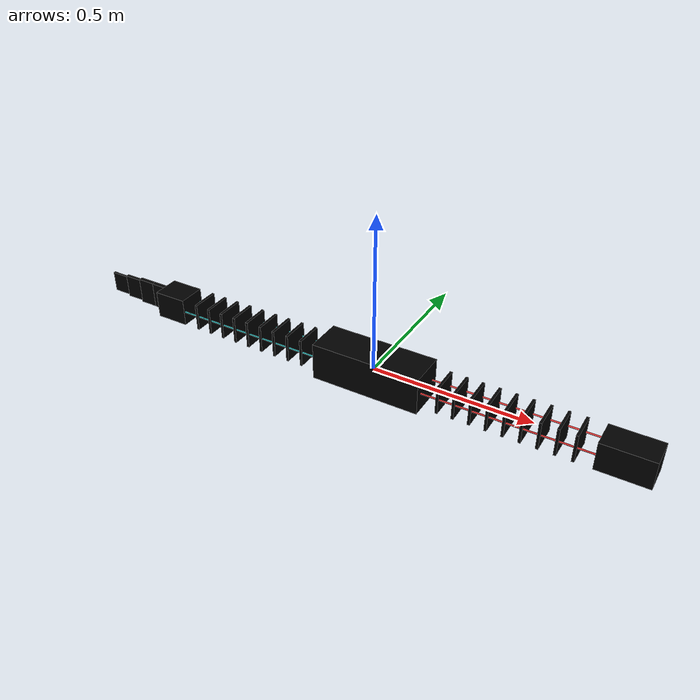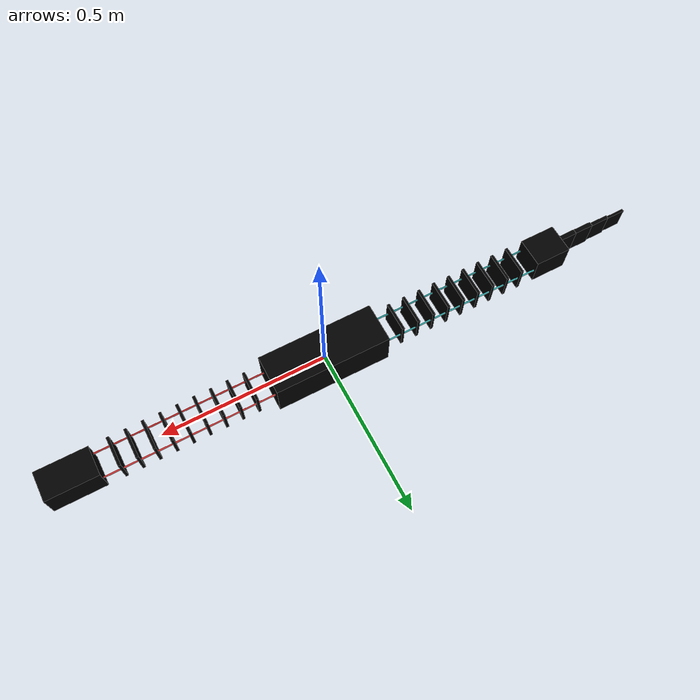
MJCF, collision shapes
<mujoco model="eel_2d_stl_rebuild">
  <compiler angle="degree" autolimits="true" inertiafromgeom="true" meshdir="generated_stl"/>
  <option timestep="0.002" gravity="0 0 0" integrator="implicitfast" cone="elliptic" iterations="100">
    <flag contact="disable"/>
  </option>
  <default>
    <site type="sphere" size="0.004" rgba="0.90 0.20 0.20 1" group="3"/>
    <default class="root_joint">
      <joint limited="false" stiffness="0" armature="0.01" damping="0.4"/>
    </default>
    <default class="active_hinge">
      <joint type="hinge" axis="0 0 1" limited="true" range="-15 15" stiffness="1.041" damping="0.05" armature="0.0005"/>
    </default>
    <default class="tail_hinge">
      <joint type="hinge" axis="0 0 1" limited="true" range="-25 25" stiffness="0.18" damping="0.02" armature="0.0002"/>
    </default>
    <default class="tendon_motor">
      <motor ctrllimited="true" ctrlrange="0 100" gear="1"/>
    </default>
  </default>
<asset>
  <mesh name="centre_compartment_mesh" file="centre_compartment_mesh.stl"/>
  <mesh name="vertebra_mesh" file="vertebra_mesh.stl"/>
  <mesh name="head_mesh" file="head_mesh.stl"/>
  <mesh name="tail_joint_mesh" file="tail_joint_mesh.stl"/>
  <mesh name="tail_seg1_mesh" file="tail_seg1_mesh.stl"/>
  <mesh name="tail_seg2_mesh" file="tail_seg2_mesh.stl"/>
  <mesh name="tail_seg3_mesh" file="tail_seg3_mesh.stl"/>
  <mesh name="tail_seg4_mesh" file="tail_seg4_mesh.stl"/>
</asset>
  <worldbody>
    <light name="light" directional="true" diffuse="0.8 0.8 0.8" pos="0 0 2.5"/>
    <camera name="top" pos="0 0 2.2" xyaxes="1 0 0 0 1 0"/>
    <camera name="oblique" pos="-1.2 -1.6 0.9" xyaxes="0.8 -0.6 0 0.2 0.3 0.93"/>
    <body name="centre_compartment" pos="0 0 0">
      <joint name="root_x" class="root_joint" type="slide" axis="1 0 0"/>
      <joint name="root_y" class="root_joint" type="slide" axis="0 1 0"/>
      <joint name="root_yaw" class="root_joint" type="hinge" axis="0 0 1"/>
      <geom name="centre_compartment_dyn" type="box" size="0.175 0.06 0.06" density="190" rgba="0 0 0 0" contype="0" conaffinity="0" group="4"/>
      <geom name="centre_compartment_vis" type="mesh" mesh="centre_compartment_mesh" mass="0" rgba="0.18 0.22 0.33 1" contype="0" conaffinity="0" group="1"/>
      <site name="centre_reference" pos="0 0 0" rgba="0 0 0 0"/>
      <site name="centre_front_left" pos="0.175 0.0375 0"/>
      <site name="centre_front_right" pos="0.175 -0.0375 0"/>
      <site name="centre_back_left" pos="-0.175 0.0375 0"/>
      <site name="centre_back_right" pos="-0.175 -0.0375 0"/>
      <body name="front_v1" pos="0.229 0 0">
        <joint name="front_v1_yaw" class="active_hinge"/>
        <geom name="front_v1_dyn" type="box" size="0.004 0.044985 0.045" density="220" rgba="0 0 0 0" contype="0" conaffinity="0" group="4"/>
        <geom name="front_v1_vis" type="mesh" mesh="vertebra_mesh" mass="0" rgba="0.20 0.54 0.81 1" contype="0" conaffinity="0" group="1"/>
        <site name="front_v1_left" pos="0 0.0375 0"/>
        <site name="front_v1_right" pos="0 -0.0375 0"/>
        <body name="front_v2" pos="0.05 0 0">
          <joint name="front_v2_yaw" class="active_hinge"/>
          <geom name="front_v2_dyn" type="box" size="0.004 0.044985 0.045" density="220" rgba="0 0 0 0" contype="0" conaffinity="0" group="4"/>
          <geom name="front_v2_vis" type="mesh" mesh="vertebra_mesh" mass="0" rgba="0.20 0.54 0.81 1" contype="0" conaffinity="0" group="1"/>
          <site name="front_v2_left" pos="0 0.0375 0"/>
          <site name="front_v2_right" pos="0 -0.0375 0"/>
          <body name="front_v3" pos="0.05 0 0">
            <joint name="front_v3_yaw" class="active_hinge"/>
            <geom name="front_v3_dyn" type="box" size="0.004 0.044985 0.045" density="220" rgba="0 0 0 0" contype="0" conaffinity="0" group="4"/>
            <geom name="front_v3_vis" type="mesh" mesh="vertebra_mesh" mass="0" rgba="0.20 0.54 0.81 1" contype="0" conaffinity="0" group="1"/>
            <site name="front_v3_left" pos="0 0.0375 0"/>
            <site name="front_v3_right" pos="0 -0.0375 0"/>
            <body name="front_v4" pos="0.05 0 0">
              <joint name="front_v4_yaw" class="active_hinge"/>
              <geom name="front_v4_dyn" type="box" size="0.004 0.044985 0.045" density="220" rgba="0 0 0 0" contype="0" conaffinity="0" group="4"/>
              <geom name="front_v4_vis" type="mesh" mesh="vertebra_mesh" mass="0" rgba="0.20 0.54 0.81 1" contype="0" conaffinity="0" group="1"/>
              <site name="front_v4_left" pos="0 0.0375 0"/>
              <site name="front_v4_right" pos="0 -0.0375 0"/>
              <body name="front_v5" pos="0.05 0 0">
                <joint name="front_v5_yaw" class="active_hinge"/>
                <geom name="front_v5_dyn" type="box" size="0.004 0.044985 0.045" density="220" rgba="0 0 0 0" contype="0" conaffinity="0" group="4"/>
                <geom name="front_v5_vis" type="mesh" mesh="vertebra_mesh" mass="0" rgba="0.20 0.54 0.81 1" contype="0" conaffinity="0" group="1"/>
                <site name="front_v5_left" pos="0 0.0375 0"/>
                <site name="front_v5_right" pos="0 -0.0375 0"/>
                <body name="front_v6" pos="0.05 0 0">
                  <joint name="front_v6_yaw" class="active_hinge"/>
                  <geom name="front_v6_dyn" type="box" size="0.004 0.044985 0.045" density="220" rgba="0 0 0 0" contype="0" conaffinity="0" group="4"/>
                  <geom name="front_v6_vis" type="mesh" mesh="vertebra_mesh" mass="0" rgba="0.20 0.54 0.81 1" contype="0" conaffinity="0" group="1"/>
                  <site name="front_v6_left" pos="0 0.0375 0"/>
                  <site name="front_v6_right" pos="0 -0.0375 0"/>
                  <body name="front_v7" pos="0.05 0 0">
                    <joint name="front_v7_yaw" class="active_hinge"/>
                    <geom name="front_v7_dyn" type="box" size="0.004 0.044985 0.045" density="220" rgba="0 0 0 0" contype="0" conaffinity="0" group="4"/>
                    <geom name="front_v7_vis" type="mesh" mesh="vertebra_mesh" mass="0" rgba="0.20 0.54 0.81 1" contype="0" conaffinity="0" group="1"/>
                    <site name="front_v7_left" pos="0 0.0375 0"/>
                    <site name="front_v7_right" pos="0 -0.0375 0"/>
                    <body name="front_v8" pos="0.05 0 0">
                      <joint name="front_v8_yaw" class="active_hinge"/>
                      <geom name="front_v8_dyn" type="box" size="0.004 0.044985 0.045" density="220" rgba="0 0 0 0" contype="0" conaffinity="0" group="4"/>
                      <geom name="front_v8_vis" type="mesh" mesh="vertebra_mesh" mass="0" rgba="0.20 0.54 0.81 1" contype="0" conaffinity="0" group="1"/>
                      <site name="front_v8_left" pos="0 0.0375 0"/>
                      <site name="front_v8_right" pos="0 -0.0375 0"/>
                      <body name="front_v9" pos="0.05 0 0">
                        <joint name="front_v9_yaw" class="active_hinge"/>
                        <geom name="front_v9_dyn" type="box" size="0.004 0.044985 0.045" density="220" rgba="0 0 0 0" contype="0" conaffinity="0" group="4"/>
                        <geom name="front_v9_vis" type="mesh" mesh="vertebra_mesh" mass="0" rgba="0.20 0.54 0.81 1" contype="0" conaffinity="0" group="1"/>
                        <site name="front_v9_left" pos="0 0.0375 0"/>
                        <site name="front_v9_right" pos="0 -0.0375 0"/>
                        <body name="head" pos="0.1315 0 0">
                          <joint name="head_yaw" class="active_hinge"/>
                          <geom name="head_dyn" type="box" size="0.0775 0.044989 0.044989" density="220" rgba="0 0 0 0" contype="0" conaffinity="0" group="4"/>
                          <geom name="head_vis" type="mesh" mesh="head_mesh" mass="0" rgba="0.10 0.37 0.64 1" contype="0" conaffinity="0" group="1"/>
                          <site name="head_left" pos="-0.0725 0.0375 0"/>
                          <site name="head_right" pos="-0.0725 -0.0375 0"/>
                        </body>
                      </body>
                    </body>
                  </body>
                </body>
              </body>
            </body>
          </body>
        </body>
      </body>
      <body name="back_v1" pos="-0.229 0 0">
        <joint name="back_v1_yaw" class="active_hinge"/>
        <geom name="back_v1_dyn" type="box" size="0.004 0.044985 0.045" density="220" rgba="0 0 0 0" contype="0" conaffinity="0" group="4"/>
        <geom name="back_v1_vis" type="mesh" mesh="vertebra_mesh" mass="0" rgba="0.20 0.54 0.81 1" contype="0" conaffinity="0" group="1"/>
        <site name="back_v1_left" pos="0 0.0375 0"/>
        <site name="back_v1_right" pos="0 -0.0375 0"/>
        <body name="back_v2" pos="-0.05 0 0">
          <joint name="back_v2_yaw" class="active_hinge"/>
          <geom name="back_v2_dyn" type="box" size="0.004 0.044985 0.045" density="220" rgba="0 0 0 0" contype="0" conaffinity="0" group="4"/>
          <geom name="back_v2_vis" type="mesh" mesh="vertebra_mesh" mass="0" rgba="0.20 0.54 0.81 1" contype="0" conaffinity="0" group="1"/>
          <site name="back_v2_left" pos="0 0.0375 0"/>
          <site name="back_v2_right" pos="0 -0.0375 0"/>
          <body name="back_v3" pos="-0.05 0 0">
            <joint name="back_v3_yaw" class="active_hinge"/>
            <geom name="back_v3_dyn" type="box" size="0.004 0.044985 0.045" density="220" rgba="0 0 0 0" contype="0" conaffinity="0" group="4"/>
            <geom name="back_v3_vis" type="mesh" mesh="vertebra_mesh" mass="0" rgba="0.20 0.54 0.81 1" contype="0" conaffinity="0" group="1"/>
            <site name="back_v3_left" pos="0 0.0375 0"/>
            <site name="back_v3_right" pos="0 -0.0375 0"/>
            <body name="back_v4" pos="-0.05 0 0">
              <joint name="back_v4_yaw" class="active_hinge"/>
              <geom name="back_v4_dyn" type="box" size="0.004 0.044985 0.045" density="220" rgba="0 0 0 0" contype="0" conaffinity="0" group="4"/>
              <geom name="back_v4_vis" type="mesh" mesh="vertebra_mesh" mass="0" rgba="0.20 0.54 0.81 1" contype="0" conaffinity="0" group="1"/>
              <site name="back_v4_left" pos="0 0.0375 0"/>
              <site name="back_v4_right" pos="0 -0.0375 0"/>
              <body name="back_v5" pos="-0.05 0 0">
                <joint name="back_v5_yaw" class="active_hinge"/>
                <geom name="back_v5_dyn" type="box" size="0.004 0.044985 0.045" density="220" rgba="0 0 0 0" contype="0" conaffinity="0" group="4"/>
                <geom name="back_v5_vis" type="mesh" mesh="vertebra_mesh" mass="0" rgba="0.20 0.54 0.81 1" contype="0" conaffinity="0" group="1"/>
                <site name="back_v5_left" pos="0 0.0375 0"/>
                <site name="back_v5_right" pos="0 -0.0375 0"/>
                <body name="back_v6" pos="-0.05 0 0">
                  <joint name="back_v6_yaw" class="active_hinge"/>
                  <geom name="back_v6_dyn" type="box" size="0.004 0.044985 0.045" density="220" rgba="0 0 0 0" contype="0" conaffinity="0" group="4"/>
                  <geom name="back_v6_vis" type="mesh" mesh="vertebra_mesh" mass="0" rgba="0.20 0.54 0.81 1" contype="0" conaffinity="0" group="1"/>
                  <site name="back_v6_left" pos="0 0.0375 0"/>
                  <site name="back_v6_right" pos="0 -0.0375 0"/>
                  <body name="back_v7" pos="-0.05 0 0">
                    <joint name="back_v7_yaw" class="active_hinge"/>
                    <geom name="back_v7_dyn" type="box" size="0.004 0.044985 0.045" density="220" rgba="0 0 0 0" contype="0" conaffinity="0" group="4"/>
                    <geom name="back_v7_vis" type="mesh" mesh="vertebra_mesh" mass="0" rgba="0.20 0.54 0.81 1" contype="0" conaffinity="0" group="1"/>
                    <site name="back_v7_left" pos="0 0.0375 0"/>
                    <site name="back_v7_right" pos="0 -0.0375 0"/>
                    <body name="back_v8" pos="-0.05 0 0">
                      <joint name="back_v8_yaw" class="active_hinge"/>
                      <geom name="back_v8_dyn" type="box" size="0.004 0.044985 0.045" density="220" rgba="0 0 0 0" contype="0" conaffinity="0" group="4"/>
                      <geom name="back_v8_vis" type="mesh" mesh="vertebra_mesh" mass="0" rgba="0.20 0.54 0.81 1" contype="0" conaffinity="0" group="1"/>
                      <site name="back_v8_left" pos="0 0.0375 0"/>
                      <site name="back_v8_right" pos="0 -0.0375 0"/>
                      <body name="back_v9" pos="-0.05 0 0">
                        <joint name="back_v9_yaw" class="active_hinge"/>
                        <geom name="back_v9_dyn" type="box" size="0.004 0.044985 0.045" density="220" rgba="0 0 0 0" contype="0" conaffinity="0" group="4"/>
                        <geom name="back_v9_vis" type="mesh" mesh="vertebra_mesh" mass="0" rgba="0.20 0.54 0.81 1" contype="0" conaffinity="0" group="1"/>
                        <site name="back_v9_left" pos="0 0.0375 0"/>
                        <site name="back_v9_right" pos="0 -0.0375 0"/>
                        <body name="joint_tail" pos="-0.109 0 0">
                          <joint name="joint_tail_yaw" class="active_hinge"/>
                          <geom name="joint_tail_dyn" type="box" size="0.055 0.04498 0.045" density="220" rgba="0 0 0 0" contype="0" conaffinity="0" group="4"/>
                          <geom name="joint_tail_vis" type="mesh" mesh="tail_joint_mesh" mass="0" rgba="0.17 0.56 0.56 1" contype="0" conaffinity="0" group="1"/>
                          <site name="joint_tail_left" pos="-0.05 0.0375 0"/>
                          <site name="joint_tail_right" pos="-0.05 -0.0375 0"/>
                          <body name="tail_seg1" pos="-0.080785 0 0">
                            <joint name="tail_seg1_yaw" class="tail_hinge"/>
                            <geom name="tail_seg1_dyn" type="box" size="0.025785 0.0075 0.043364" density="140" rgba="0 0 0 0" contype="0" conaffinity="0" group="4"/>
                            <geom name="tail_seg1_vis" type="mesh" mesh="tail_seg1_mesh" mass="0" rgba="0.88 0.75 0.44 1" contype="0" conaffinity="0" group="1"/>
                            <body name="tail_seg2" pos="-0.055 0 0">
                              <joint name="tail_seg2_yaw" class="tail_hinge"/>
                              <geom name="tail_seg2_dyn" type="box" size="0.029215 0.006935 0.043302" density="140" rgba="0 0 0 0" contype="0" conaffinity="0" group="4"/>
                              <geom name="tail_seg2_vis" type="mesh" mesh="tail_seg2_mesh" mass="0" rgba="0.88 0.75 0.44 1" contype="0" conaffinity="0" group="1"/>
                              <body name="tail_seg3" pos="-0.059215 0 0">
                                <joint name="tail_seg3_yaw" class="tail_hinge"/>
                                <geom name="tail_seg3_dyn" type="box" size="0.03 0.005405 0.038704" density="140" rgba="0 0 0 0" contype="0" conaffinity="0" group="4"/>
                                <geom name="tail_seg3_vis" type="mesh" mesh="tail_seg3_mesh" mass="0" rgba="0.88 0.75 0.44 1" contype="0" conaffinity="0" group="1"/>
                                <body name="tail_seg4" pos="-0.06 0 0">
                                  <joint name="tail_seg4_yaw" class="tail_hinge"/>
                                  <geom name="tail_seg4_dyn" type="box" size="0.03 0.003834 0.033982" density="140" rgba="0 0 0 0" contype="0" conaffinity="0" group="4"/>
                                  <geom name="tail_seg4_vis" type="mesh" mesh="tail_seg4_mesh" mass="0" rgba="0.88 0.75 0.44 1" contype="0" conaffinity="0" group="1"/>
                                </body>
                              </body>
                            </body>
                          </body>
                        </body>
                      </body>
                    </body>
                  </body>
                </body>
              </body>
            </body>
          </body>
        </body>
      </body>
    </body>
  </worldbody>
  <tendon>
    <spatial name="front_wire_left" width="0.0025" rgba="0.95 0.25 0.25 1">
      <site site="centre_front_left"/>
      <site site="front_v1_left"/>
      <site site="front_v2_left"/>
      <site site="front_v3_left"/>
      <site site="front_v4_left"/>
      <site site="front_v5_left"/>
      <site site="front_v6_left"/>
      <site site="front_v7_left"/>
      <site site="front_v8_left"/>
      <site site="front_v9_left"/>
      <site site="head_left"/>
    </spatial>
    <spatial name="front_wire_right" width="0.0025" rgba="0.85 0.18 0.18 1">
      <site site="centre_front_right"/>
      <site site="front_v1_right"/>
      <site site="front_v2_right"/>
      <site site="front_v3_right"/>
      <site site="front_v4_right"/>
      <site site="front_v5_right"/>
      <site site="front_v6_right"/>
      <site site="front_v7_right"/>
      <site site="front_v8_right"/>
      <site site="front_v9_right"/>
      <site site="head_right"/>
    </spatial>
    <spatial name="back_wire_left" width="0.0025" rgba="0.25 0.80 0.80 1">
      <site site="centre_back_left"/>
      <site site="back_v1_left"/>
      <site site="back_v2_left"/>
      <site site="back_v3_left"/>
      <site site="back_v4_left"/>
      <site site="back_v5_left"/>
      <site site="back_v6_left"/>
      <site site="back_v7_left"/>
      <site site="back_v8_left"/>
      <site site="back_v9_left"/>
      <site site="joint_tail_left"/>
    </spatial>
    <spatial name="back_wire_right" width="0.0025" rgba="0.18 0.68 0.68 1">
      <site site="centre_back_right"/>
      <site site="back_v1_right"/>
      <site site="back_v2_right"/>
      <site site="back_v3_right"/>
      <site site="back_v4_right"/>
      <site site="back_v5_right"/>
      <site site="back_v6_right"/>
      <site site="back_v7_right"/>
      <site site="back_v8_right"/>
      <site site="back_v9_right"/>
      <site site="joint_tail_right"/>
    </spatial>
  </tendon>
  <actuator>
    <motor name="front_left_motor" class="tendon_motor" tendon="front_wire_left"/>
    <motor name="front_right_motor" class="tendon_motor" tendon="front_wire_right"/>
    <motor name="back_left_motor" class="tendon_motor" tendon="back_wire_left"/>
    <motor name="back_right_motor" class="tendon_motor" tendon="back_wire_right"/>
  </actuator>
  <sensor>
    <jointpos name="root_x_pos_sensor" joint="root_x"/>
    <jointpos name="root_y_pos_sensor" joint="root_y"/>
    <jointpos name="root_yaw_pos_sensor" joint="root_yaw"/>
    <jointvel name="root_x_vel_sensor" joint="root_x"/>
    <jointvel name="root_y_vel_sensor" joint="root_y"/>
    <jointvel name="root_yaw_vel_sensor" joint="root_yaw"/>
    <framepos name="head_pos" objtype="xbody" objname="head"/>
    <framepos name="joint_tail_pos" objtype="xbody" objname="joint_tail"/>
    <framexaxis name="centre_xaxis" objtype="xbody" objname="centre_compartment"/>
  </sensor>
</mujoco>
